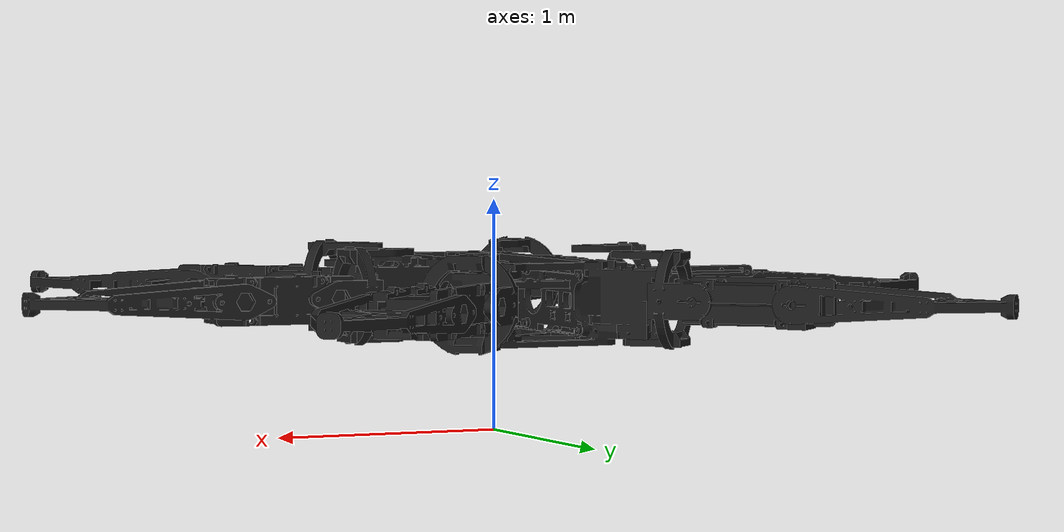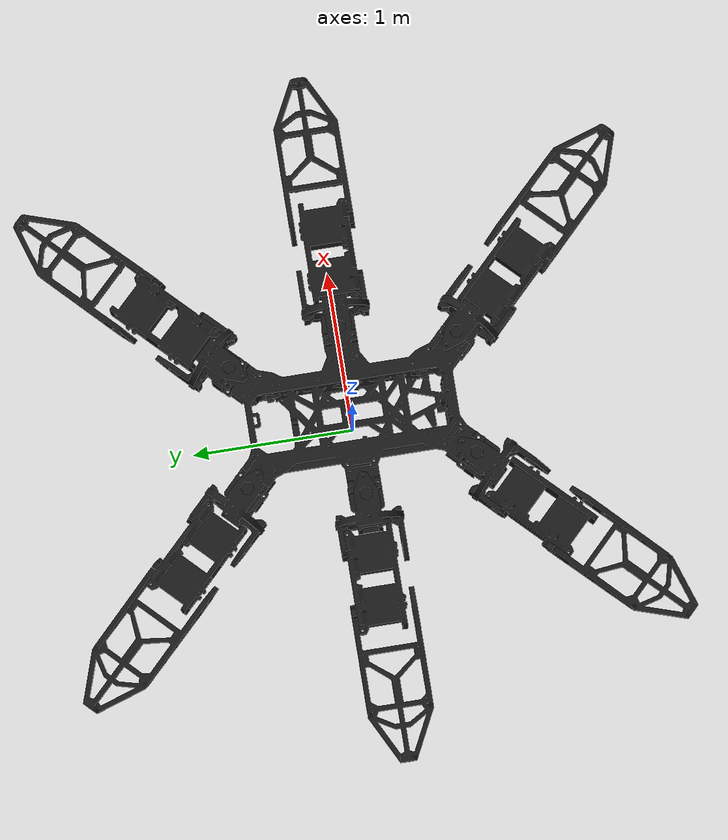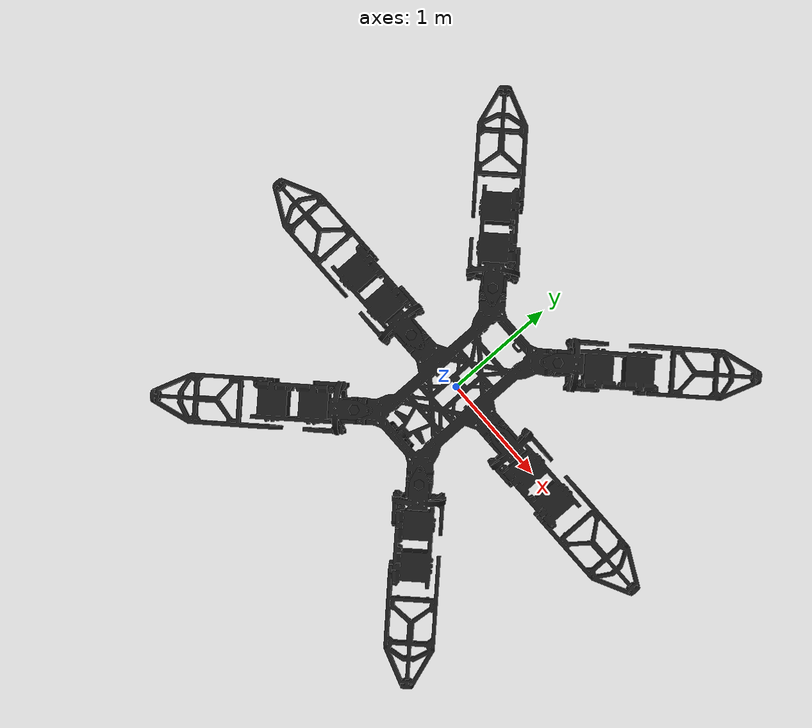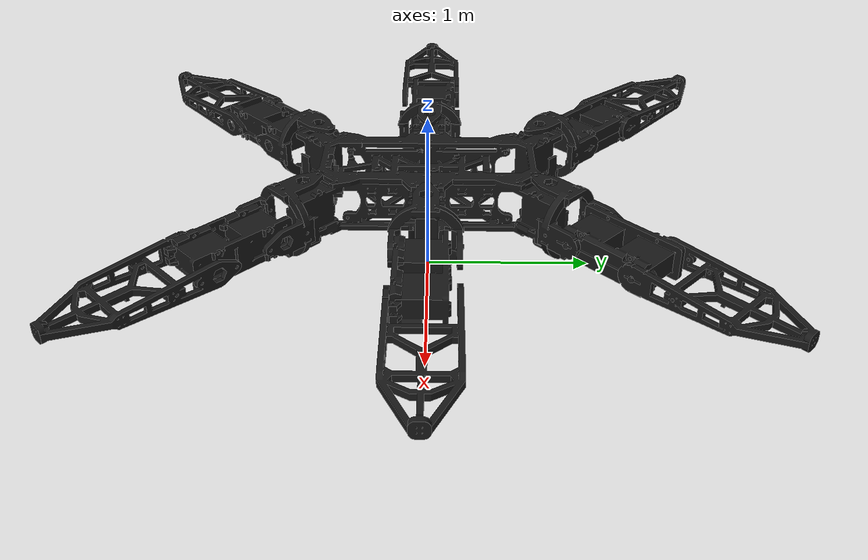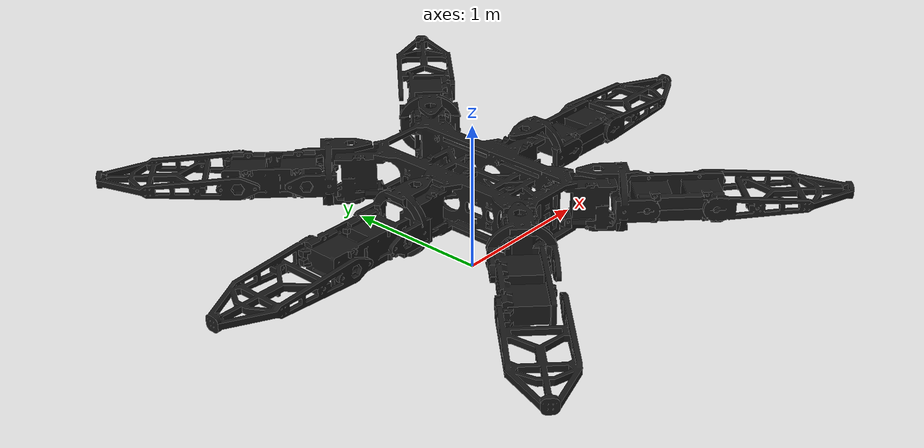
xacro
<?xml version="1.0"?>
<robot xmlns:xacro="http://www.ros.org/wiki/xacro" name="robot">
    <material name="shell_color">
        <color rgba="1 1 1 1" />
    </material>
    <material name="body_color">
        <color rgba="0.1 0.1 0.1 1" />
    </material>
    <material name="foot_color">
        <color rgba="0 0.75 1 1" />
    </material>

    <!-- Params -->

    <xacro:property name="body_length" value="0.140" />
    <xacro:property name="body_width" value="0.110" />
    <xacro:property name="body_height" value="0.070" />

    <xacro:property name="shoulder_length" value="0.044" />
    <xacro:property name="shoulder_width" value="0.038" />

    <xacro:property name="leg_length" value="0.1075" />
    <xacro:property name="foot_length" value="0.130" />

    <xacro:property name="toe_radius" value="0.020" />
    <xacro:property name="toe_width" value="0.020" />
    <xacro:property name="shift" value="-1.015" />
    <xacro:property name="shiftx" value="0.38" />
    <xacro:property name="shifty" value="0.6" />

    <xacro:property name="leg_x" value="0.37" />
    <xacro:property name="leg_x_center" value="0.51" />
    <xacro:property name="leg_y" value="0.69" />
    <xacro:property name="leg_y_center" value="0" />
    <xacro:property name="shiftz" value="0" />

    <xacro:property name="front_left_angle" value="2.35619" />
    <xacro:property name="front_right_angle" value="0.785398" />
    <xacro:property name="middle_left_angle" value="3.14159" />
    <xacro:property name="middle_right_angle" value="0" />
    <xacro:property name="back_left_angle" value="-2.35619" />
    <xacro:property name="back_right_angle" value="-0.785398" />

    <!-- Macros -->

    <xacro:macro name="gen_shoulder" params="name">
        <link name="${name}">
            <visual>
                <geometry>
                    <mesh filename="package://hexapod_rviz/stl/joint.stl" scale="0.01 0.01 0.01" />
                </geometry>
                <origin rpy="0 0 3.14159" xyz="-0.12 -0.05 0.4" />
                <material name="body_color" />
            </visual>
            <collision>
                <geometry>
                    <box size="${shoulder_length} ${shoulder_width} ${body_height}" />
                </geometry>
                <origin rpy="0 0 0" xyz="0 0 0" />
            </collision>
            <inertial>
                <mass value="0.10" />
                <inertia ixx="100" ixy="0" ixz="0" iyy="100" iyz="0" izz="100" />
            </inertial>
        </link>
    </xacro:macro>

    <xacro:macro name="gen_leg" params="name">
        <link name="${name}">
            <visual>
                <geometry>
                    <mesh filename="package://hexapod_rviz/stl/middle_joint.stl" scale="0.01 0.01 0.01" />
                </geometry>
                <origin rpy="0 0 0" xyz="-1.7142 0 -0.011" />
                <material name="body_color" />
            </visual>
        </link>
    </xacro:macro>

    <xacro:macro name="gen_foot" params="name">
        <link name="${name}">
            <visual>
                <geometry>
                    <mesh filename="package://hexapod_rviz/stl/foot.stl" scale="0.01 0.01 0.01" />
                </geometry>
                <origin rpy="0 3.14159 0" xyz="0.98 -0.485 0.0225" />
                <material name="body_color" />
            </visual>
            <collision>
                <geometry>
                    <box size="0.026 0.020 ${foot_length}" />
                </geometry>
                <origin rpy="0.0 0.0 0.0" xyz="0.0 0.0 -0.050" />
            </collision>
            <inertial>
                <mass value="0.1" />
                <inertia ixx="1000" ixy="0" ixz="0" iyy="1000" iyz="0" izz="1000" />
            </inertial>
        </link>
    </xacro:macro>

    <!-- Macros joints -->

    <xacro:macro name="gen_shoulder_joint" params="pos shiftx shifty angle">
        <joint name="${pos}_shoulder" type="revolute">
            <parent link="base_link" />
            <child link="${pos}_shoulder_link" />
            <axis xyz="0 0 1" />
            <origin rpy="0 0 ${angle}" xyz="${shiftx} ${shifty} 0" />
            <limit effort="1000.0" lower="-0.548" upper="0.548" velocity="0.7" />
            <dynamics damping="0.0" friction="0.5" />
        </joint>
    </xacro:macro>

    <xacro:macro name="gen_leg_joint" params="pos shift">
        <joint name="${pos}_leg" type="revolute">
            <parent link="${pos}_shoulder_link" />
            <child link="${pos}_leg_link" />
            <axis xyz="0 1 0" />
            <origin rpy="0 0 0" xyz="-0.28 ${shift} 0.59" />
            <limit effort="1000.0" lower="-2.666" upper="1.548" velocity="0.5" />
            <dynamics damping="0.0" friction="0.0" />
        </joint>
    </xacro:macro>

    <xacro:macro name="gen_foot_joint" params="pos">
        <joint name="${pos}_foot" type="revolute">
            <parent link="${pos}_leg_link" />
            <child link="${pos}_foot_link" />
            <axis xyz="0 1 0" />
            <origin rpy="0 0 0" xyz="-0.43 0 -0" />
            <limit effort="1000.0" lower="-2.6" upper="0.1" velocity="0.5" />
            <dynamics damping="0.0" friction="0.5" />
        </joint>
    </xacro:macro>

    <!-- Leg macros -->

    <xacro:macro name="gen_full_leg_joint" params="pos shiftx shifty shift angle">
        <xacro:gen_shoulder name="${pos}_shoulder_link" />
        <xacro:gen_leg name="${pos}_leg_link" />
        <xacro:gen_foot name="${pos}_foot_link" />

        <xacro:gen_shoulder_joint pos="${pos}" shiftx="${shiftx}" shifty="${shifty}"
            angle="${angle}" />
        <xacro:gen_leg_joint pos="${pos}" shift="${shift}" />
        <xacro:gen_foot_joint pos="${pos}" />
    </xacro:macro>

    <!-- Robot Body -->
    <link name="base_link">
        <visual>
            <geometry>
                <mesh filename="package://hexapod_rviz/stl/body.stl" scale="0.01 0.01 0.01" />
            </geometry>
            <material name="body_color" />
            <origin rpy="0 0 0" xyz="-0.286 -0.6 0.40" />
        </visual>

        <collision>
            <geometry>
                <box size="${body_length} ${body_width} ${body_height}" />
            </geometry>
            <origin rpy="0 0 0" xyz="0 0 0" />
        </collision>
        <inertial>
            <mass value="2.80" />
            <inertia ixx="100" ixy="0" ixz="0" iyy="100" iyz="0" izz="100" />
        </inertial>
    </link>

    <xacro:gen_full_leg_joint pos="front_left" shiftx="${leg_x}" shifty="-${leg_y}" shift="${shift}"
        angle="${front_left_angle}" />
    <xacro:gen_full_leg_joint pos="front_right" shiftx="-${leg_x}" shifty="-${leg_y}"
        shift="${shift}" angle="${front_right_angle}" />

    <xacro:gen_full_leg_joint pos="middle_left" shiftx="${leg_x_center}" shifty="${leg_y_center}"
        shift="${shift}"
        angle="${middle_left_angle}" />
    <xacro:gen_full_leg_joint pos="middle_right" shiftx="-${leg_x_center}" shifty="${leg_y_center}"
        shift="${shift}" angle="${middle_right_angle}" />

    <xacro:gen_full_leg_joint pos="back_left" shiftx="${leg_x}" shifty="${leg_y}" shift="${shift}"
        angle="${back_left_angle}" />
    <xacro:gen_full_leg_joint pos="back_right" shiftx="-${leg_x}" shifty="${leg_y}" shift="${shift}"
        angle="${back_right_angle}" />
</robot>
